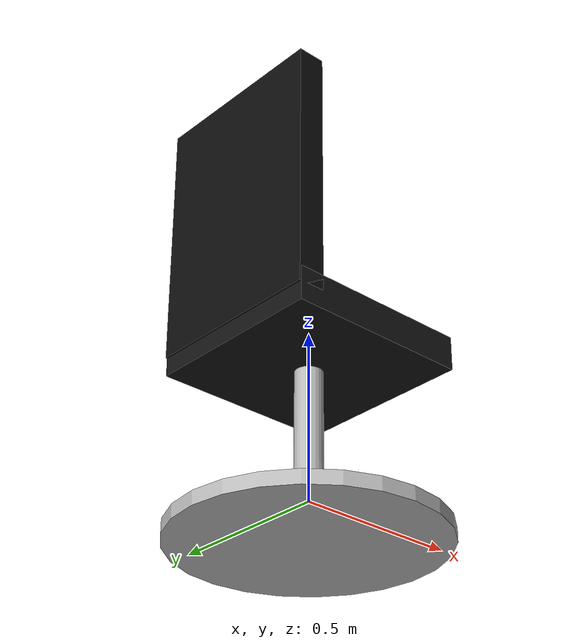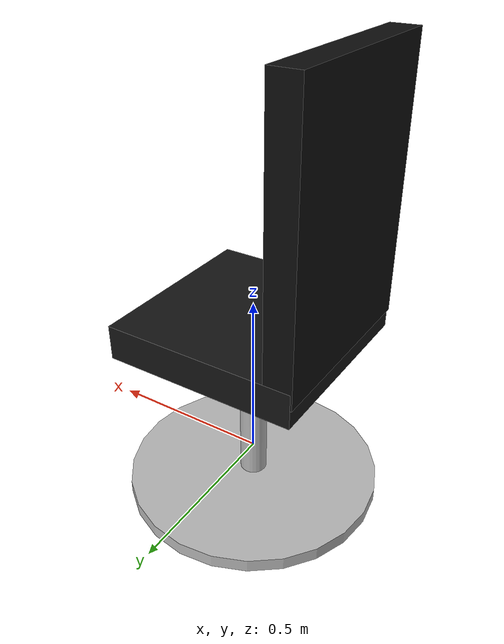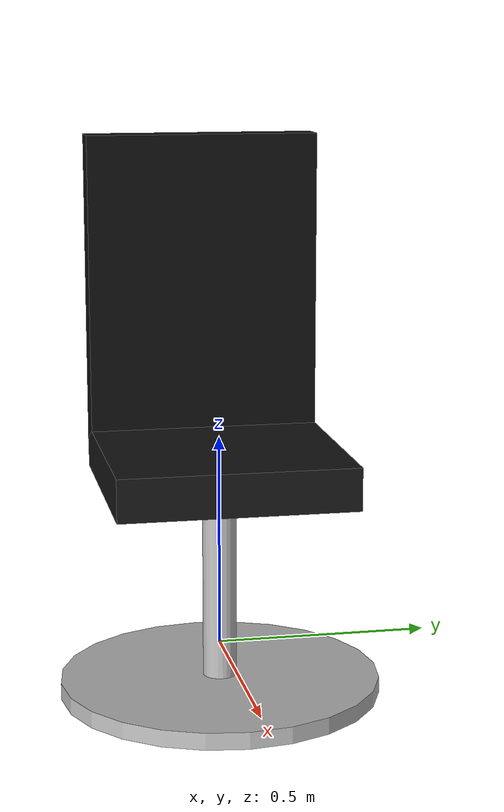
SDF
<?xml version="1.0" ?>
<sdf version="1.9">
  <model name="chair_1">
    <static>false</static>
    <self_collide>false</self_collide>

    <link name="chair_body">
      <pose>0 0 0.43 0 0 0</pose>

      <inertial>
        <mass>8.0</mass>
        <inertia>
          <ixx>0.45</ixx>
          <iyy>0.45</iyy>
          <izz>0.35</izz>
          <ixy>0</ixy>
          <ixz>0</ixz>
          <iyz>0</iyz>
        </inertia>
      </inertial>

      <!-- Seat -->
      <visual name="seat_visual">
        <pose>0 0 0 0 0 0</pose>
        <geometry>
          <box>
            <size>0.55 0.55 0.10</size>
          </box>
        </geometry>
        <material>
          <ambient>0.08 0.08 0.08 1</ambient>
          <diffuse>0.08 0.08 0.08 1</diffuse>
        </material>
      </visual>

      <collision name="seat_collision">
        <pose>0 0 0 0 0 0</pose>
        <geometry>
          <box>
            <size>0.55 0.55 0.10</size>
          </box>
        </geometry>
      </collision>

      <!-- Backrest -->
      <visual name="back_visual">
        <pose>-0.24 0 0.38 0 0 0</pose>
        <geometry>
          <box>
            <size>0.08 0.55 0.75</size>
          </box>
        </geometry>
        <material>
          <ambient>0.05 0.05 0.05 1</ambient>
          <diffuse>0.05 0.05 0.05 1</diffuse>
        </material>
      </visual>

      <collision name="back_collision">
        <pose>-0.24 0 0.38 0 0 0</pose>
        <geometry>
          <box>
            <size>0.08 0.55 0.75</size>
          </box>
        </geometry>
      </collision>

      <!-- Pedestal -->
      <visual name="pedestal_visual">
        <pose>0 0 -0.26 0 0 0</pose>
        <geometry>
          <cylinder>
            <radius>0.04</radius>
            <length>0.52</length>
          </cylinder>
        </geometry>
      </visual>

      <collision name="pedestal_collision">
        <pose>0 0 -0.26 0 0 0</pose>
        <geometry>
          <cylinder>
            <radius>0.04</radius>
            <length>0.52</length>
          </cylinder>
        </geometry>
      </collision>

      <!-- 5-star rolling base, simplified as one low-friction collision -->
      <visual name="base_visual">
        <pose>0 0 -0.53 0 0 0</pose>
        <geometry>
          <cylinder>
            <radius>0.38</radius>
            <length>0.04</length>
          </cylinder>
        </geometry>
      </visual>

      <collision name="base_collision">
        <pose>0 0 -0.53 0 0 0</pose>
        <geometry>
          <cylinder>
            <radius>0.38</radius>
            <length>0.04</length>
          </cylinder>
        </geometry>
        <surface>
          <friction>
            <ode>
              <mu>0.05</mu>
              <mu2>0.05</mu2>
            </ode>
          </friction>
        </surface>
      </collision>

    </link>
  </model>
</sdf>
